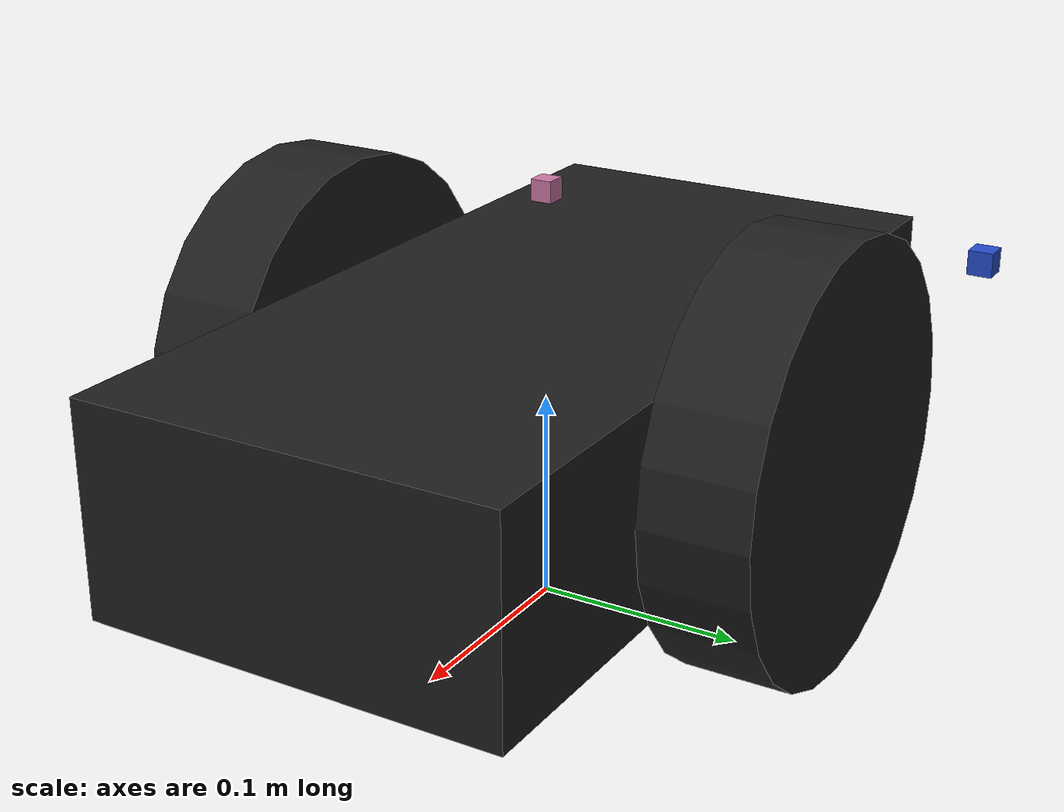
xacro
<?xml version="1.0"?>

<robot name="mybot" xmlns:xacro="http://www.ros.org/wiki/xacro">

<xacro:property name="PI" value="3.1415926535897931"/>

<xacro:property name="chassisHeight" value="0.1"/>
<xacro:property name="chassisLength" value="0.4"/>
<xacro:property name="chassisWidth" value="0.2"/>
<xacro:property name="chassisMass" value="50"/>

<xacro:property name="casterRadius" value="0.05"/>
<xacro:property name="casterMass" value="5"/>

<xacro:property name="wheelWidth" value="0.05"/>
<xacro:property name="wheelRadius" value="0.1"/>
<xacro:property name="wheelPos" value="0.2"/>
<xacro:property name="wheelMass" value="5"/>

<xacro:property name="cameraSize" value="0.01"/>
<xacro:property name="cameraMass" value="0.1"/>

<xacro:include filename="$(find mybot_description)/urdf/mybot.gazebo" />

<xacro:include filename="$(find mybot_description)/urdf/macros.xacro" />
<link name="footprint" />

<joint name="base_joint" type="fixed">
  <parent link="footprint"/>
  <child link="chassis"/>
</joint>
<link name='chassis'>
	<collision>
		<origin xyz="0 0 ${wheelRadius}" rpy="0 0 0"/>
		<geometry>
			<box size="${chassisLength} ${chassisWidth} ${chassisHeight}"/>
		</geometry>
	</collision>
	<visual>
		<origin xyz="0 0 ${wheelRadius}" rpy="0 0 0"/>
		<geometry>
			<box size="${chassisLength} ${chassisWidth} ${chassisHeight}"/>
		</geometry>
	</visual>
	<inertial>
		<origin xyz="0 0 ${wheelRadius}" rpy="0 0 0"/>
		<mass value="${chassisMass}"/>
		<box_inertia m="${chassisMass}" x="${chassisLength}" y="${chassisWidth}" z="${chassisHeight}"/>
	</inertial>
</link>
<joint name="fixed" type="fixed">
  <parent link="chassis"/>
  <child link="caster_wheel"/>
</joint>
<joint name="camera" type="fixed">
  <parent link="chassis"/>
  <child link="camera_link"/>
</joint>
<link name="camera_link">
  <collision>
    <origin xyz="0 .2 .2" rpy="0 0 0"/>
    <geometry>
      <box size="${cameraSize} ${cameraSize} ${cameraSize}"/>
    </geometry>
  </collision>

  <visual>
    <origin xyz="0 .2 .2" rpy="0 0 0"/>
    <geometry>
      <box size="${cameraSize} ${cameraSize} ${cameraSize}"/>
    </geometry>
    <material name="blue"/>
  </visual>

  <inertial>
    <mass value="${cameraMass}" />
    <origin xyz="0 .2 .2" rpy="0 0 0"/>
    <box_inertia m="${cameraMass}" x="${cameraSize}" y="${cameraSize}" z="${cameraSize}" />
  </inertial>
</link>

<link name="caster_wheel">
  <collision>
    <origin xyz="${casterRadius-chassisLength/2} 0 ${casterRadius-chassisHeight+wheelRadius}" rpy="0 0 0"/>
    <geometry>
      <sphere radius="${casterRadius}"/>
    </geometry>
  </collision>

  <visual>
    <origin xyz="${casterRadius-chassisLength/2} 0 ${casterRadius-chassisHeight+wheelRadius}" rpy="0 0 0"/>
    <geometry>
      <sphere radius="${casterRadius}"/>
    </geometry>
    <material name="red"/>
  </visual>

  <inertial>
    <origin xyz="${casterRadius-chassisLength/2} 0 ${casterRadius-chassisHeight+wheelRadius}" rpy="0 0 0"/>
    <mass value="${casterMass}"/>
    <sphere_inertia m="${casterMass}" r="${casterRadius}"/>
  </inertial>
</link>
<wheel lr="left" tY="1"/>
<wheel lr="right" tY="-1"/>
<joint name="hokuyo_joint" type="fixed">
    <axis xyz="0 1 0" />
    <origin xyz="0 0 .2" rpy="0 0 0"/>
    <parent link="chassis"/>
    <child link="hokuyo_link"/>
  </joint>

  <!-- Hokuyo Laser -->
  <link name="hokuyo_link">
    <collision>
      <origin xyz="0 0 0" rpy="0 0 0"/>
      <geometry>
    <box size="0.1 0.1 0.1"/>
      </geometry>
    </collision>

    <visual>
      <origin xyz="0 0 0" rpy="0 0 0"/>
      <geometry>
       <box size="${cameraSize} ${cameraSize} ${cameraSize}"/>
      </geometry>
    </visual>

    <inertial>
      <mass value="1e-5" />
      <origin xyz="0 0 0" rpy="0 0 0"/>
      <inertia ixx="1e-6" ixy="0" ixz="0" iyy="1e-6" iyz="0" izz="1e-6" />
    </inertial>
  </link>

</robot>

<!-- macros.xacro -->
<robot name="mybot" xmlns:xacro="http://www.ros.org/wiki/xacro">

<macro name="cylinder_inertia" params="m r h">
  <inertia  ixx="${m*(3*r*r+h*h)/12}" ixy = "0" ixz = "0"
    iyy="${m*(3*r*r+h*h)/12}" iyz = "0"
    izz="${m*r*r/2}"
  />
</macro>

<macro name="box_inertia" params="m x y z">
  <inertia  ixx="${m*(y*y+z*z)/12}" ixy = "0" ixz = "0"
    iyy="${m*(x*x+z*z)/12}" iyz = "0"
    izz="${m*(x*x+z*z)/12}"
  />
</macro>

<macro name="sphere_inertia" params="m r">
  <inertia  ixx="${2*m*r*r/5}" ixy = "0" ixz = "0"
    iyy="${2*m*r*r/5}" iyz = "0"
    izz="${2*m*r*r/5}"
  />
</macro>
<macro name="wheel" params="lr tY">

<link name="${lr}_wheel">
  <collision>
    <origin xyz="0 0 0" rpy="0 ${PI/2} ${PI/2}" />
    <geometry>
      <cylinder length="${wheelWidth}" radius="${wheelRadius}"/>
    </geometry>
  </collision>

  <visual>
    <origin xyz="0 0 0" rpy="0 ${PI/2} ${PI/2}" />
    <geometry>
      <cylinder length="${wheelWidth}" radius="${wheelRadius}"/>
    </geometry>
    <material name="black"/>
  </visual>

  <inertial>
    <origin xyz="0 0 0" rpy="0 ${PI/2} ${PI/2}" />
    <mass value="${wheelMass}"/>
    <cylinder_inertia m="${wheelMass}" r="${wheelRadius}" h="${wheelWidth}"/>
  </inertial>
</link>

<gazebo reference="${lr}_wheel">
  <mu1 value="1.0"/>
  <mu2 value="1.0"/>
  <kp  value="10000000.0" />
  <kd  value="1.0" />
 <material>Gazebo/Green</material>
</gazebo>

<joint name="${lr}_wheel_hinge" type="continuous">
  <parent link="chassis"/>
  <child link="${lr}_wheel"/>
<origin xyz="${-wheelPos+chassisLength/2} ${tY*wheelWidth/2+tY*chassisWidth/2} ${wheelRadius}" rpy="0 0 0" />
  <axis xyz="0 1 0" rpy="0 0 0" />
  <limit effort="100" velocity="100"/>
  <joint_properties damping="0.0" friction="0.0"/>
</joint>

<transmission name="${lr}_trans">
  <type>transmission_interface/SimpleTransmission</type>
  <joint name="${lr}_wheel_hinge">
    <hardwareInterface>hardware_interface/EffortJointInterface</hardwareInterface>

</joint>
<actuator name="${lr}Motor">
    <mechanicalReduction>1</mechanicalReduction>

  </actuator>
</transmission>

</macro>

</robot>
